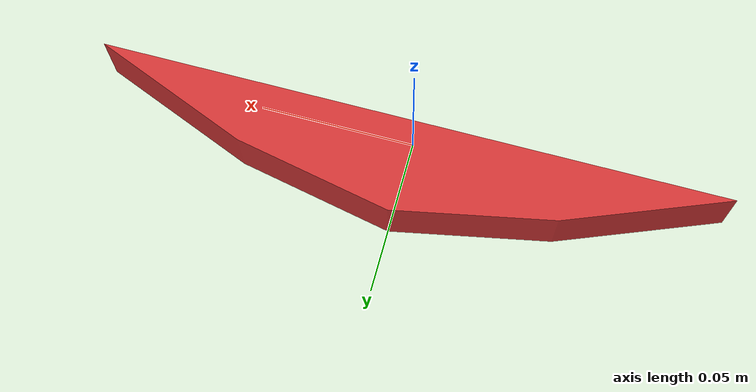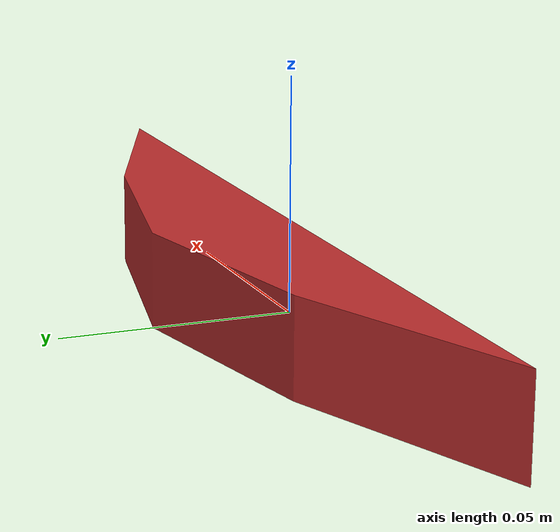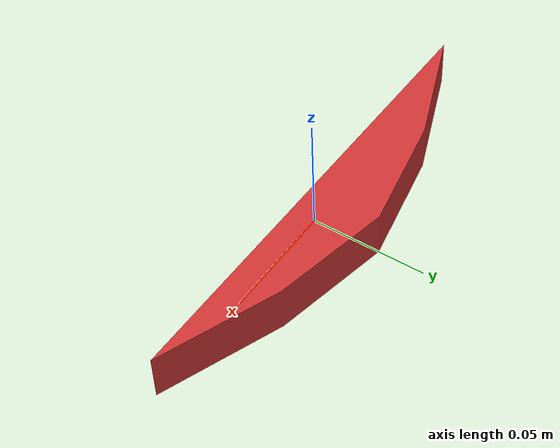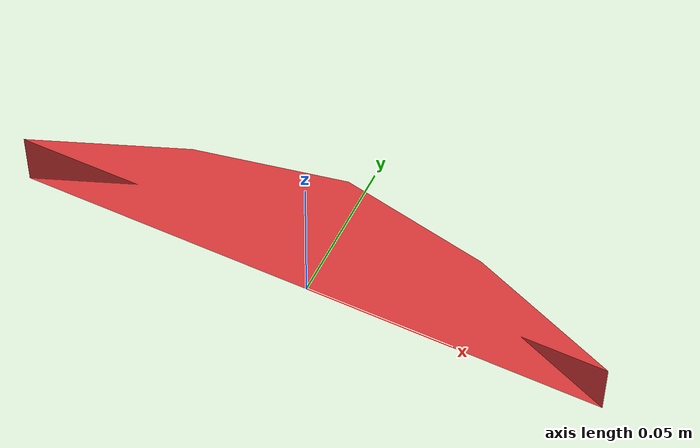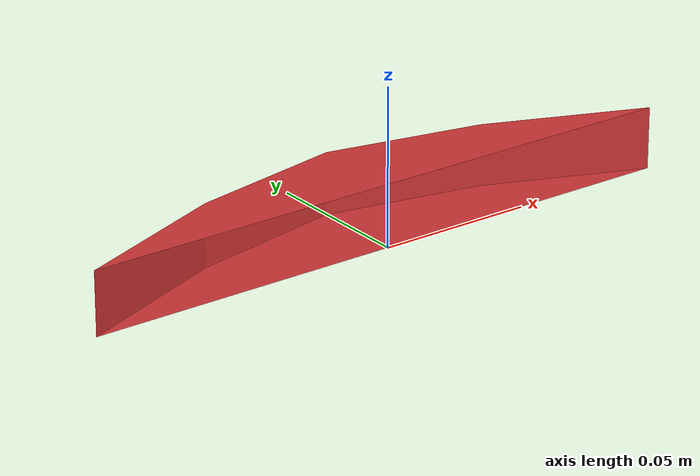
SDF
<?xml version="1.0"?>
<sdf version="1.7">
  <model name="banana_variant">
    <link name="banana_variant_link">
      <inertial>
        <mass>1.0</mass>
        <inertia>
          <ixx>0.006</ixx>
          <iyy>0.037</iyy>
          <izz>0.037</izz>
          <ixy>0.0</ixy>
          <ixz>0.0</ixz>
          <iyz>0.0</iyz>
        </inertia>
      </inertial>
      <visual name="banana_variant_visual">
        <geometry>
          <mesh>
            <uri>banana.obj</uri>
            <scale>0.1 0.1 0.1</scale>
          </mesh>
        </geometry>
        <material>
          <diffuse>0.8 0.2 0.2 1</diffuse>
          <ambient>0.3 0.1 0.1 1</ambient>
        </material>
      </visual>
    </link>
  </model>
</sdf>
